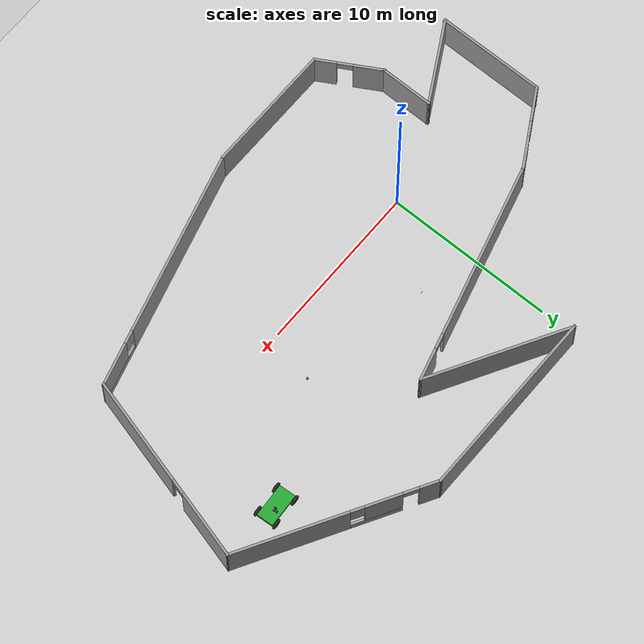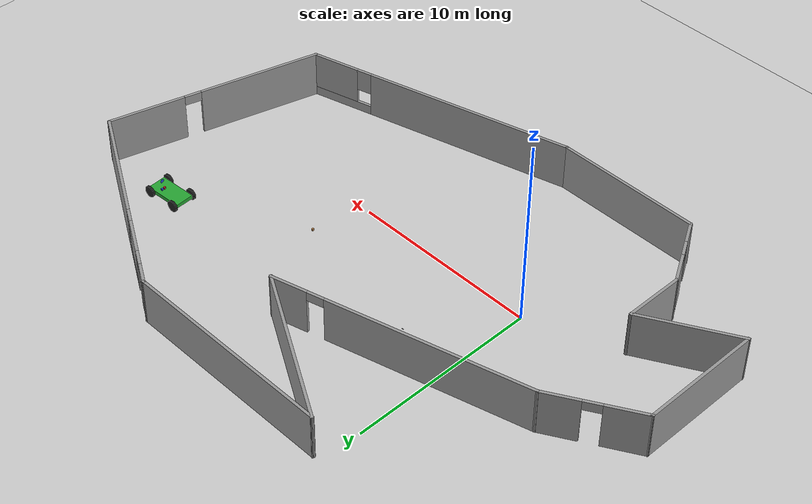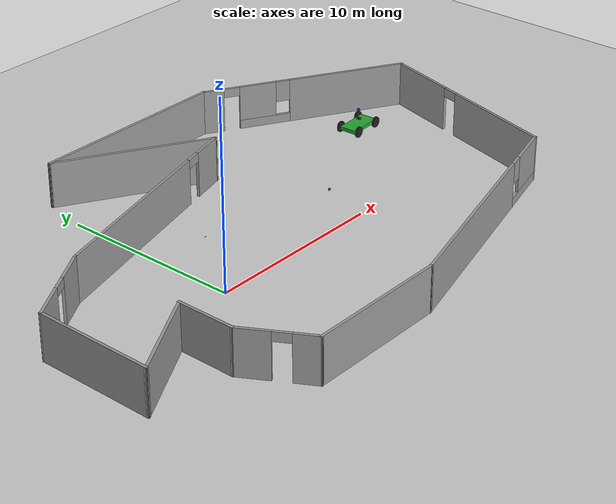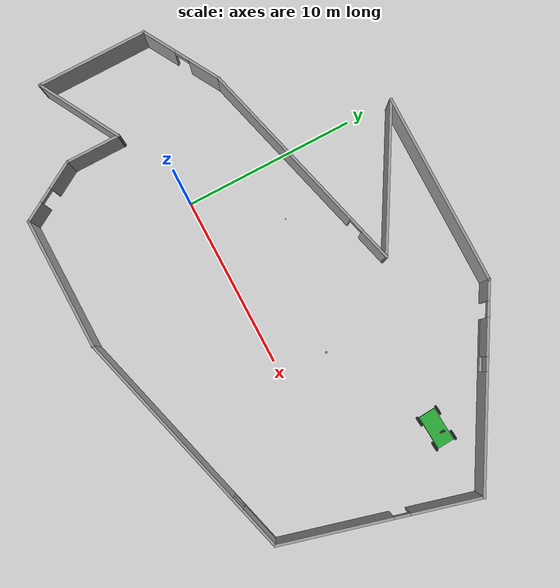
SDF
<sdf version="1.7">
 <world name="default">
  <light name="sun" type="directional">
   <pose>0 0 10 0 -0 0</pose>
   <diffuse>0.8 0.8 0.8 1</diffuse>
   <specular>0.2 0.2 0.2 1</specular>
   <attenuation>
    <range>1000</range>
    <constant>0.9</constant>
    <linear>0.01</linear>
    <quadratic>0.001</quadratic>
   </attenuation>
   <direction>-0.5 0.1 -0.9</direction>
   <spot><inner_angle>0</inner_angle><outer_angle>0</outer_angle><falloff>0</falloff></spot>
  </light>
  <model name="ground_plane">
   <static>1</static>
   <link name="link">
    <collision name="collision">
     <geometry><plane><normal>0 0 1</normal><size>100 100</size></plane></geometry>
     <surface><friction><ode><mu>100</mu><mu2>50</mu2></ode></friction></surface>
    </collision>
    <visual name="visual">
     <cast_shadows>0</cast_shadows>
     <geometry><plane><normal>0 0 1</normal><size>100 100</size></plane></geometry>
     <material>
      <script><uri>file://media/materials/scripts/gazebo.material</uri><name>Gazebo/Grey</name></script>
     </material>
    </visual>
   </link>
  </model>
  <gravity>0 0 -9.8</gravity>
  <magnetic_field>6e-06 2.3e-05 -4.2e-05</magnetic_field>
  <atmosphere type="adiabatic"/>
  <physics type="ode">
   <max_step_size>0.001</max_step_size>
   <real_time_factor>1</real_time_factor>
   <real_time_update_rate>1000</real_time_update_rate>
  </physics>
  <scene><ambient>0.4 0.4 0.4 1</ambient><background>0.7 0.7 0.7 1</background><shadows>1</shadows></scene>
  <audio><device>default</device></audio>
  <spherical_coordinates>
   <surface_model>EARTH_WGS84</surface_model>
   <latitude_deg>0</latitude_deg>
   <longitude_deg>0</longitude_deg>
   <elevation>0</elevation>
   <heading_deg>0</heading_deg>
  </spherical_coordinates>
  <model name="Untitled">
   <pose>6.19693 2.05446 0 0 -0 0</pose>
   <link name="Wall_0">
    <collision name="Wall_0_Collision">
     <geometry><box><size>3.25 0.15 2.5</size></box></geometry>
     <pose>0 0 1.25 0 -0 0</pose>
    </collision>
    <visual name="Wall_0_Visual">
     <pose>0 0 1.25 0 -0 0</pose>
     <geometry><box><size>3.25 0.15 2.5</size></box></geometry>
     <material>
      <script><uri>file://media/materials/scripts/gazebo.material</uri><name>Gazebo/Grey</name></script>
      <ambient>1 1 1 1</ambient>
     </material>
     <meta><layer>0</layer></meta>
    </visual>
    <pose>-10.9269 -5.35446 0 0 -0 -1.5708</pose>
   </link>
   <link name="Wall_1">
    <pose>-9.96443 -8.57156 0 0 -0 -1.0472</pose>
    <visual name="Wall_1_Visual_0">
     <pose>-1.111 0 1.25 0 -0 0</pose>
     <geometry><box><size>1.77801 0.15 2.5</size></box></geometry>
     <material>
      <script><uri>file://media/materials/scripts/gazebo.material</uri><name>Gazebo/Grey</name></script>
      <ambient>1 1 1 1</ambient>
     </material>
     <meta><layer>0</layer></meta>
    </visual>
    <collision name="Wall_1_Collision_0">
     <geometry><box><size>1.77801 0.15 2.5</size></box></geometry>
     <pose>-1.111 0 1.25 0 -0 0</pose>
    </collision>
    <visual name="Wall_1_Visual_1">
     <pose>1.339 0 1.25 0 -0 0</pose>
     <geometry><box><size>1.32199 0.15 2.5</size></box></geometry>
     <material>
      <script><uri>file://media/materials/scripts/gazebo.material</uri><name>Gazebo/Grey</name></script>
      <ambient>1 1 1 1</ambient>
     </material>
     <meta><layer>0</layer></meta>
    </visual>
    <collision name="Wall_1_Collision_1">
     <geometry><box><size>1.32199 0.15 2.5</size></box></geometry>
     <pose>1.339 0 1.25 0 -0 0</pose>
    </collision>
    <visual name="Wall_1_Visual_2">
     <pose>0.228008 0 2.25 0 -0 0</pose>
     <geometry><box><size>0.9 0.15 0.5</size></box></geometry>
     <material>
      <script><uri>file://media/materials/scripts/gazebo.material</uri><name>Gazebo/Grey</name></script>
      <ambient>1 1 1 1</ambient>
     </material>
     <meta><layer>0</layer></meta>
    </visual>
    <collision name="Wall_1_Collision_2">
     <geometry><box><size>0.9 0.15 0.5</size></box></geometry>
     <pose>0.228008 0 2.25 0 -0 0</pose>
    </collision>
   </link>
   <link name="Wall_10">
    <pose>-13.2966 1.27092 0 0 -0 -2.61799</pose>
    <visual name="Wall_10_Visual_0">
     <pose>-1.51658 0 1.25 0 -0 0</pose>
     <geometry><box><size>1.96685 0.15 2.5</size></box></geometry>
     <material>
      <script><uri>file://media/materials/scripts/gazebo.material</uri><name>Gazebo/Grey</name></script>
      <ambient>1 1 1 1</ambient>
     </material>
     <meta><layer>0</layer></meta>
    </visual>
    <collision name="Wall_10_Collision_0">
     <geometry><box><size>1.96685 0.15 2.5</size></box></geometry>
     <pose>-1.51658 0 1.25 0 -0 0</pose>
    </collision>
    <visual name="Wall_10_Visual_1">
     <pose>1.43342 0 1.25 0 -0 0</pose>
     <geometry><box><size>2.13315 0.15 2.5</size></box></geometry>
     <material>
      <script><uri>file://media/materials/scripts/gazebo.material</uri><name>Gazebo/Grey</name></script>
      <ambient>1 1 1 1</ambient>
     </material>
     <meta><layer>0</layer></meta>
    </visual>
    <collision name="Wall_10_Collision_1">
     <geometry><box><size>2.13315 0.15 2.5</size></box></geometry>
     <pose>1.43342 0 1.25 0 -0 0</pose>
    </collision>
    <visual name="Wall_10_Visual_2">
     <pose>-0.083152 0 2.25 0 -0 0</pose>
     <geometry><box><size>0.9 0.15 0.5</size></box></geometry>
     <material>
      <script><uri>file://media/materials/scripts/gazebo.material</uri><name>Gazebo/Grey</name></script>
      <ambient>1 1 1 1</ambient>
     </material>
     <meta><layer>0</layer></meta>
    </visual>
    <collision name="Wall_10_Collision_2">
     <geometry><box><size>0.9 0.15 0.5</size></box></geometry>
     <pose>-0.083152 0 2.25 0 -0 0</pose>
    </collision>
   </link>
   <link name="Wall_11">
    <collision name="Wall_11_Collision">
     <geometry><box><size>6.5 0.15 2.5</size></box></geometry>
     <pose>0 0 1.25 0 -0 0</pose>
    </collision>
    <visual name="Wall_11_Visual">
     <pose>0 0 1.25 0 -0 0</pose>
     <geometry><box><size>6.5 0.15 2.5</size></box></geometry>
     <material>
      <script><uri>file://media/materials/scripts/gazebo.material</uri><name>Gazebo/Grey</name></script>
      <ambient>1 1 1 1</ambient>
     </material>
     <meta><layer>0</layer></meta>
    </visual>
    <pose>-15.3967 -3.11658 0 0 -0 -1.5708</pose>
   </link>
   <link name="Wall_12">
    <collision name="Wall_12_Collision">
     <geometry><box><size>5.26514 0.15 2.5</size></box></geometry>
     <pose>0 0 1.25 0 -0 0</pose>
    </collision>
    <visual name="Wall_12_Visual">
     <pose>0 0 1.25 0 -0 0</pose>
     <geometry><box><size>5.26514 0.15 2.5</size></box></geometry>
     <material>
      <script><uri>file://media/materials/scripts/gazebo.material</uri><name>Gazebo/Grey</name></script>
      <ambient>1 1 1 1</ambient>
     </material>
     <meta><layer>0</layer></meta>
    </visual>
    <pose>-13.1618 -5.04802 0 0 -0 0.507767</pose>
   </link>
   <link name="Wall_3">
    <collision name="Wall_3_Collision">
     <geometry><box><size>7.75 0.15 2.5</size></box></geometry>
     <pose>0 0 1.25 0 -0 0</pose>
    </collision>
    <visual name="Wall_3_Visual">
     <pose>0 0 1.25 0 -0 0</pose>
     <geometry><box><size>7.75 0.15 2.5</size></box></geometry>
     <material>
      <script><uri>file://media/materials/scripts/gazebo.material</uri><name>Gazebo/Grey</name></script>
      <ambient>1 1 1 1</ambient>
     </material>
     <meta><layer>0</layer></meta>
    </visual>
    <pose>-5.20193 -10.2387 0 0 -0 0</pose>
   </link>
   <link name="Wall_4">
    <pose>5.52859 -8.38163 0 0 -0 0.261799</pose>
    <visual name="Wall_4_Visual_0">
     <pose>-1.70071 0 1.25 0 -0 0</pose>
     <geometry><box><size>11.0986 0.15 2.5</size></box></geometry>
     <material>
      <script><uri>file://media/materials/scripts/gazebo.material</uri><name>Gazebo/Grey</name></script>
      <ambient>1 1 1 1</ambient>
     </material>
     <meta><layer>0</layer></meta>
    </visual>
    <collision name="Wall_4_Collision_0">
     <geometry><box><size>11.0986 0.15 2.5</size></box></geometry>
     <pose>-1.70071 0 1.25 0 -0 0</pose>
    </collision>
    <visual name="Wall_4_Visual_1">
     <pose>5.54929 0 0.25 0 -0 0</pose>
     <geometry><box><size>3.40143 0.15 0.5</size></box></geometry>
     <material>
      <script><uri>file://media/materials/scripts/gazebo.material</uri><name>Gazebo/Grey</name></script>
      <ambient>1 1 1 1</ambient>
     </material>
     <meta><layer>0</layer></meta>
    </visual>
    <collision name="Wall_4_Collision_1">
     <geometry><box><size>3.40143 0.15 0.5</size></box></geometry>
     <pose>5.54929 0 0.25 0 -0 0</pose>
    </collision>
    <visual name="Wall_4_Visual_2">
     <pose>5.94928 0 1.5 0 -0 0</pose>
     <geometry><box><size>2.60143 0.15 2</size></box></geometry>
     <material>
      <script><uri>file://media/materials/scripts/gazebo.material</uri><name>Gazebo/Grey</name></script>
      <ambient>1 1 1 1</ambient>
     </material>
     <meta><layer>0</layer></meta>
    </visual>
    <collision name="Wall_4_Collision_2">
     <geometry><box><size>2.60143 0.15 2</size></box></geometry>
     <pose>5.94928 0 1.5 0 -0 0</pose>
    </collision>
    <visual name="Wall_4_Visual_3">
     <pose>4.24857 0 1.9 0 -0 0</pose>
     <geometry><box><size>0.8 0.15 1.2</size></box></geometry>
     <material>
      <script><uri>file://media/materials/scripts/gazebo.material</uri><name>Gazebo/Grey</name></script>
      <ambient>1 1 1 1</ambient>
     </material>
     <meta><layer>0</layer></meta>
    </visual>
    <collision name="Wall_4_Collision_3">
     <geometry><box><size>0.8 0.15 1.2</size></box></geometry>
     <pose>4.24857 0 1.9 0 -0 0</pose>
    </collision>
   </link>
   <link name="Wall_5">
    <pose>13.9279 -1.04297 0 0 -0 1.309</pose>
    <visual name="Wall_5_Visual_0">
     <pose>-2.49197 0 1.25 0 -0 0</pose>
     <geometry><box><size>6.51606 0.15 2.5</size></box></geometry>
     <material>
      <script><uri>file://media/materials/scripts/gazebo.material</uri><name>Gazebo/Grey</name></script>
      <ambient>1 1 1 1</ambient>
     </material>
     <meta><layer>0</layer></meta>
    </visual>
    <collision name="Wall_5_Collision_0">
     <geometry><box><size>6.51606 0.15 2.5</size></box></geometry>
     <pose>-2.49197 0 1.25 0 -0 0</pose>
    </collision>
    <visual name="Wall_5_Visual_1">
     <pose>3.70803 0 1.25 0 -0 0</pose>
     <geometry><box><size>4.08394 0.15 2.5</size></box></geometry>
     <material>
      <script><uri>file://media/materials/scripts/gazebo.material</uri><name>Gazebo/Grey</name></script>
      <ambient>1 1 1 1</ambient>
     </material>
     <meta><layer>0</layer></meta>
    </visual>
    <collision name="Wall_5_Collision_1">
     <geometry><box><size>4.08394 0.15 2.5</size></box></geometry>
     <pose>3.70803 0 1.25 0 -0 0</pose>
    </collision>
    <visual name="Wall_5_Visual_2">
     <pose>1.21606 0 2.25 0 -0 0</pose>
     <geometry><box><size>0.9 0.15 0.5</size></box></geometry>
     <material>
      <script><uri>file://media/materials/scripts/gazebo.material</uri><name>Gazebo/Grey</name></script>
      <ambient>1 1 1 1</ambient>
     </material>
     <meta><layer>0</layer></meta>
    </visual>
    <collision name="Wall_5_Collision_2">
     <geometry><box><size>0.9 0.15 0.5</size></box></geometry>
     <pose>1.21606 0 2.25 0 -0 0</pose>
    </collision>
   </link>
   <link name="Wall_6">
    <pose>10.3738 7.33866 0 0 -0 2.61799</pose>
    <visual name="Wall_6_Visual_0">
     <pose>-2.51206 0 1.25 0 -0 0</pose>
     <geometry><box><size>6.72589 0.15 2.5</size></box></geometry>
     <material>
      <script><uri>file://media/materials/scripts/gazebo.material</uri><name>Gazebo/Grey</name></script>
      <ambient>1 1 1 1</ambient>
     </material>
     <meta><layer>0</layer></meta>
    </visual>
    <collision name="Wall_6_Collision_0">
     <geometry><box><size>6.72589 0.15 2.5</size></box></geometry>
     <pose>-2.51206 0 1.25 0 -0 0</pose>
    </collision>
    <visual name="Wall_6_Visual_1">
     <pose>5.25921 0 1.25 0 -0 0</pose>
     <geometry><box><size>1.23158 0.15 2.5</size></box></geometry>
     <material>
      <script><uri>file://media/materials/scripts/gazebo.material</uri><name>Gazebo/Grey</name></script>
      <ambient>1 1 1 1</ambient>
     </material>
     <meta><layer>0</layer></meta>
    </visual>
    <collision name="Wall_6_Collision_1">
     <geometry><box><size>1.23158 0.15 2.5</size></box></geometry>
     <pose>5.25921 0 1.25 0 -0 0</pose>
    </collision>
    <visual name="Wall_6_Visual_2">
     <pose>2.29715 0 0.25 0 -0 0</pose>
     <geometry><box><size>2.89253 0.15 0.5</size></box></geometry>
     <material>
      <script><uri>file://media/materials/scripts/gazebo.material</uri><name>Gazebo/Grey</name></script>
      <ambient>1 1 1 1</ambient>
     </material>
     <meta><layer>0</layer></meta>
    </visual>
    <collision name="Wall_6_Collision_2">
     <geometry><box><size>2.89253 0.15 0.5</size></box></geometry>
     <pose>2.29715 0 0.25 0 -0 0</pose>
    </collision>
    <visual name="Wall_6_Visual_3">
     <pose>2.69715 0 1.5 0 -0 0</pose>
     <geometry><box><size>2.09253 0.15 2</size></box></geometry>
     <material>
      <script><uri>file://media/materials/scripts/gazebo.material</uri><name>Gazebo/Grey</name></script>
      <ambient>1 1 1 1</ambient>
     </material>
     <meta><layer>0</layer></meta>
    </visual>
    <collision name="Wall_6_Collision_3">
     <geometry><box><size>2.09253 0.15 2</size></box></geometry>
     <pose>2.69715 0 1.5 0 -0 0</pose>
    </collision>
    <visual name="Wall_6_Visual_4">
     <pose>1.25089 0 1.9 0 -0 0</pose>
     <geometry><box><size>0.8 0.15 1.2</size></box></geometry>
     <material>
      <script><uri>file://media/materials/scripts/gazebo.material</uri><name>Gazebo/Grey</name></script>
      <ambient>1 1 1 1</ambient>
     </material>
     <meta><layer>0</layer></meta>
    </visual>
    <collision name="Wall_6_Collision_4">
     <geometry><box><size>0.8 0.15 1.2</size></box></geometry>
     <pose>1.25089 0 1.9 0 -0 0</pose>
    </collision>
    <visual name="Wall_6_Visual_5">
     <pose>4.19341 0 2.25 0 -0 0</pose>
     <geometry><box><size>0.9 0.15 0.5</size></box></geometry>
     <material>
      <script><uri>file://media/materials/scripts/gazebo.material</uri><name>Gazebo/Grey</name></script>
      <ambient>1 1 1 1</ambient>
     </material>
     <meta><layer>0</layer></meta>
    </visual>
    <collision name="Wall_6_Collision_5">
     <geometry><box><size>0.9 0.15 0.5</size></box></geometry>
     <pose>4.19341 0 2.25 0 -0 0</pose>
    </collision>
   </link>
   <link name="Wall_7">
    <collision name="Wall_7_Collision">
     <geometry><box><size>11.25 0.15 2.5</size></box></geometry>
     <pose>0 0 1.25 0 -0 0</pose>
    </collision>
    <visual name="Wall_7_Visual">
     <pose>0 0 1.25 0 -0 0</pose>
     <geometry><box><size>11.25 0.15 2.5</size></box></geometry>
     <material>
      <script><uri>file://media/materials/scripts/gazebo.material</uri><name>Gazebo/Grey</name></script>
      <ambient>1 1 1 1</ambient>
     </material>
     <meta><layer>0</layer></meta>
    </visual>
    <pose>-0.199192 10.2387 0 0 -0 3.14159</pose>
   </link>
   <link name="Wall_8">
    <collision name="Wall_8_Collision">
     <geometry><box><size>8.75 0.15 2.5</size></box></geometry>
     <pose>0 0 1.25 0 -0 0</pose>
    </collision>
    <visual name="Wall_8_Visual">
     <pose>0 0 1.25 0 -0 0</pose>
     <geometry><box><size>8.75 0.15 2.5</size></box></geometry>
     <material>
      <script><uri>file://media/materials/scripts/gazebo.material</uri><name>Gazebo/Grey</name></script>
      <ambient>1 1 1 1</ambient>
     </material>
     <meta><layer>0</layer></meta>
    </visual>
    <pose>-2.02528 8.08865 0 0 -0 -0.523599</pose>
   </link>
   <link name="Wall_9">
    <pose>-4.74893 4.21104 0 0 -0 -2.87979</pose>
    <visual name="Wall_9_Visual_0">
     <pose>-5.75632 0 1.25 0 -0 0</pose>
     <geometry><box><size>1.98737 0.15 2.5</size></box></geometry>
     <material>
      <script><uri>file://media/materials/scripts/gazebo.material</uri><name>Gazebo/Grey</name></script>
      <ambient>1 1 1 1</ambient>
     </material>
     <meta><layer>0</layer></meta>
    </visual>
    <collision name="Wall_9_Collision_0">
     <geometry><box><size>1.98737 0.15 2.5</size></box></geometry>
     <pose>-5.75632 0 1.25 0 -0 0</pose>
    </collision>
    <visual name="Wall_9_Visual_1">
     <pose>1.44368 0 1.25 0 -0 0</pose>
     <geometry><box><size>10.6126 0.15 2.5</size></box></geometry>
     <material>
      <script><uri>file://media/materials/scripts/gazebo.material</uri><name>Gazebo/Grey</name></script>
      <ambient>1 1 1 1</ambient>
     </material>
     <meta><layer>0</layer></meta>
    </visual>
    <collision name="Wall_9_Collision_1">
     <geometry><box><size>10.6126 0.15 2.5</size></box></geometry>
     <pose>1.44368 0 1.25 0 -0 0</pose>
    </collision>
    <visual name="Wall_9_Visual_2">
     <pose>-4.31263 0 2.25 0 -0 0</pose>
     <geometry><box><size>0.9 0.15 0.5</size></box></geometry>
     <material>
      <script><uri>file://media/materials/scripts/gazebo.material</uri><name>Gazebo/Grey</name></script>
      <ambient>1 1 1 1</ambient>
     </material>
     <meta><layer>0</layer></meta>
    </visual>
    <collision name="Wall_9_Collision_2">
     <geometry><box><size>0.9 0.15 0.5</size></box></geometry>
     <pose>-4.31263 0 2.25 0 -0 0</pose>
    </collision>
   </link>
   <static>1</static>
  </model>
  <model name="stone_10_2_5_1cm">
   <link name="link">
    <pose>0 0 0.005 0 -0 0</pose>
    <inertial>
     <mass>0.0628</mass>
     <inertia>
      <ixx>3.79417e-06</ixx>
      <ixy>0</ixy>
      <ixz>0</ixz>
      <iyy>5.28567e-05</iyy>
      <iyz>0</iyz>
      <izz>5.56042e-05</izz>
     </inertia>
    </inertial>
    <collision name="collision">
     <geometry><box><size>0.1 0.025 0.01</size></box></geometry>
     <surface>
      <contact>
       <poissons_ratio>0.15</poissons_ratio>
       <elastic_modulus>8e+10</elastic_modulus>
       <ode><kp>100000</kp><kd>100</kd><max_vel>100</max_vel><min_depth>0.001</min_depth></ode>
      </contact>
      <friction>
       <torsional>
        <coefficient>1</coefficient>
        <use_patch_radius>0</use_patch_radius>
        <surface_radius>0.01</surface_radius>
       </torsional>
      </friction>
     </surface>
    </collision>
    <visual name="visual">
     <geometry><box><size>0.1 0.025 0.01</size></box></geometry>
     <material>
      <script><uri>file://media/materials/scripts/gazebo.material</uri><name>Gazebo/Grey</name></script>
     </material>
    </visual>
   </link>
   <pose>3.2251 4.33604 -0.001002 -0 -0 -0</pose>
  </model>
  <model name="wood_cube_10cm">
   <link name="link">
    <pose>0 0 0.05 0 -0 0</pose>
    <inertial>
     <mass>0.5167</mass>
     <inertia>
      <ixx>0.000861167</ixx>
      <ixy>0</ixy>
      <ixz>0</ixz>
      <iyy>0.000861167</iyy>
      <iyz>0</iyz>
      <izz>0.000861167</izz>
     </inertia>
    </inertial>
    <collision name="collision">
     <geometry><box><size>0.1 0.1 0.1</size></box></geometry>
     <surface>
      <contact>
       <poissons_ratio>0.347</poissons_ratio>
       <elastic_modulus>8.8e+09</elastic_modulus>
       <ode><kp>100000</kp><kd>100</kd><max_vel>100</max_vel><min_depth>0.001</min_depth></ode>
      </contact>
      <friction>
       <torsional>
        <coefficient>1</coefficient>
        <use_patch_radius>0</use_patch_radius>
        <surface_radius>0.01</surface_radius>
       </torsional>
      </friction>
     </surface>
    </collision>
    <visual name="visual">
     <geometry><box><size>0.1 0.1 0.1</size></box></geometry>
     <material>
      <script><uri>file://media/materials/scripts/gazebo.material</uri><name>Gazebo/Wood</name></script>
     </material>
    </visual>
   </link>
   <pose>10.9215 2.82272 -0.001013 0 -0 0</pose>
  </model>
  <model name="car">
   <link name="chassis">
    <pose>0 0 0.3 0 -0 0</pose>
    <collision name="collision"><geometry><box><size>2 1 0.2</size></box></geometry></collision>
    <visual name="visual">
     <geometry><box><size>2 1 0.2</size></box></geometry>
     <material>
      <script><uri>file://media/materials/scripts/gazebo.material</uri><name>Gazebo/Green</name></script>
     </material>
    </visual>
    <inertial>
     <inertia><ixx>1</ixx><ixy>0</ixy><ixz>0</ixz><iyy>1</iyy><iyz>0</iyz><izz>1</izz></inertia>
     <mass>1</mass>
    </inertial>
   </link>
   <link name="front_left_wheel">
    <pose>0.8 0.6 0.3 -0 1.5707 1.5707</pose>
    <collision name="collision">
     <geometry><cylinder><radius>0.3</radius><length>0.1</length></cylinder></geometry>
    </collision>
    <visual name="visual">
     <geometry><cylinder><radius>0.3</radius><length>0.1</length></cylinder></geometry>
     <material>
      <script><uri>file://media/materials/scripts/gazebo.material</uri><name>Gazebo/Black</name></script>
     </material>
    </visual>
    <inertial>
     <inertia><ixx>1</ixx><ixy>0</ixy><ixz>0</ixz><iyy>1</iyy><iyz>0</iyz><izz>1</izz></inertia>
     <mass>1</mass>
    </inertial>
   </link>
   <link name="front_right_wheel">
    <pose>0.8 -0.6 0.3 -0 1.5707 1.5707</pose>
    <collision name="collision">
     <geometry><cylinder><radius>0.3</radius><length>0.1</length></cylinder></geometry>
    </collision>
    <visual name="visual">
     <geometry><cylinder><radius>0.3</radius><length>0.1</length></cylinder></geometry>
     <material>
      <script><uri>file://media/materials/scripts/gazebo.material</uri><name>Gazebo/Black</name></script>
     </material>
    </visual>
    <inertial>
     <inertia><ixx>1</ixx><ixy>0</ixy><ixz>0</ixz><iyy>1</iyy><iyz>0</iyz><izz>1</izz></inertia>
     <mass>1</mass>
    </inertial>
   </link>
   <link name="back_right_wheel">
    <pose>-0.8 -0.6 0.3 -0 1.5707 1.5707</pose>
    <collision name="collision">
     <geometry><cylinder><radius>0.3</radius><length>0.1</length></cylinder></geometry>
    </collision>
    <visual name="visual">
     <geometry><cylinder><radius>0.3</radius><length>0.1</length></cylinder></geometry>
     <material>
      <script><uri>file://media/materials/scripts/gazebo.material</uri><name>Gazebo/Black</name></script>
     </material>
    </visual>
    <inertial>
     <inertia><ixx>1</ixx><ixy>0</ixy><ixz>0</ixz><iyy>1</iyy><iyz>0</iyz><izz>1</izz></inertia>
     <mass>1</mass>
    </inertial>
   </link>
   <link name="back_left_wheel">
    <pose>-0.8 0.6 0.3 -0 1.5707 1.5707</pose>
    <collision name="collision">
     <geometry><cylinder><radius>0.3</radius><length>0.1</length></cylinder></geometry>
    </collision>
    <visual name="visual">
     <geometry><cylinder><radius>0.3</radius><length>0.1</length></cylinder></geometry>
     <material>
      <script><uri>file://media/materials/scripts/gazebo.material</uri><name>Gazebo/Black</name></script>
     </material>
    </visual>
    <inertial>
     <inertia><ixx>1</ixx><ixy>0</ixy><ixz>0</ixz><iyy>1</iyy><iyz>0</iyz><izz>1</izz></inertia>
     <mass>1</mass>
    </inertial>
   </link>
   <link name="gas_pedal">
    <pose>0.3 0.1 0.5 0 -0 0</pose>
    <collision name="collision"><geometry><box><size>0.1 0.1 0.1</size></box></geometry></collision>
    <visual name="visual">
     <geometry><box><size>0.1 0.1 0.1</size></box></geometry>
     <material>
      <script><uri>file://media/materials/scripts/gazebo.material</uri><name>Gazebo/Red</name></script>
     </material>
    </visual>
    <inertial>
     <inertia><ixx>1</ixx><ixy>0</ixy><ixz>0</ixz><iyy>1</iyy><iyz>0</iyz><izz>1</izz></inertia>
     <mass>1</mass>
    </inertial>
   </link>
   <link name="brake_pedal">
    <pose>0.3 0.25 0.5 0 -0 0</pose>
    <collision name="collision"><geometry><box><size>0.1 0.1 0.1</size></box></geometry></collision>
    <visual name="visual">
     <geometry><box><size>0.1 0.1 0.1</size></box></geometry>
     <material>
      <script><uri>file://media/materials/scripts/gazebo.material</uri><name>Gazebo/Blue</name></script>
     </material>
    </visual>
    <inertial>
     <inertia><ixx>1</ixx><ixy>0</ixy><ixz>0</ixz><iyy>1</iyy><iyz>0</iyz><izz>1</izz></inertia>
     <mass>1</mass>
    </inertial>
   </link>
   <link name="steering_wheel">
    <pose>0.3 0.2 1 0 1.5707 0</pose>
    <collision name="collision">
     <geometry><cylinder><radius>0.1</radius><length>0.01</length></cylinder></geometry>
    </collision>
    <visual name="visual">
     <geometry><cylinder><radius>0.1</radius><length>0.01</length></cylinder></geometry>
     <material>
      <script><uri>file://media/materials/scripts/gazebo.material</uri><name>Gazebo/Blue</name></script>
     </material>
    </visual>
    <inertial>
     <inertia><ixx>1</ixx><ixy>0</ixy><ixz>0</ixz><iyy>1</iyy><iyz>0</iyz><izz>1</izz></inertia>
     <mass>1</mass>
    </inertial>
   </link>
   <joint name="gas_joint" type="prismatic">
    <parent>chassis</parent>
    <child>gas_pedal</child>
    <axis>
     <xyz expressed_in="__model__">1 0 0</xyz>
     <limit><lower>0</lower><upper>0.2</upper></limit>
     <dynamics><spring_reference>0</spring_reference><spring_stiffness>0</spring_stiffness></dynamics>
    </axis>
   </joint>
   <joint name="brake_joint" type="prismatic">
    <parent>chassis</parent>
    <child>brake_pedal</child>
    <axis>
     <xyz expressed_in="__model__">1 0 0</xyz>
     <limit><lower>0</lower><upper>0.2</upper></limit>
     <dynamics><spring_reference>0</spring_reference><spring_stiffness>0</spring_stiffness></dynamics>
    </axis>
   </joint>
   <joint name="steering_joint" type="revolute">
    <parent>chassis</parent>
    <child>steering_wheel</child>
    <axis>
     <xyz expressed_in="__model__">1 0 0</xyz>
     <limit><lower>-7.853</lower><upper>7.853</upper></limit>
     <dynamics><spring_reference>0</spring_reference><spring_stiffness>0</spring_stiffness></dynamics>
    </axis>
   </joint>
   <joint name="front_left_joint" type="revolute2">
    <parent>chassis</parent>
    <child>front_left_wheel</child>
    <axis>
     <xyz expressed_in="__model__">0 0 1</xyz>
     <limit><lower>2.07138e-07</lower><upper>2.07138e-07</upper></limit>
     <dynamics><spring_reference>0</spring_reference><spring_stiffness>0</spring_stiffness></dynamics>
    </axis>
    <axis2>
     <xyz expressed_in="__model__">0 1 0</xyz>
     <limit><upper>1e+16</upper><lower>-1e+16</lower></limit>
     <dynamics><spring_reference>0</spring_reference><spring_stiffness>0</spring_stiffness></dynamics>
    </axis2>
    <physics><ode><limit><cfm>0</cfm><erp>0.9</erp></limit></ode></physics>
   </joint>
   <joint name="front_right_joint" type="revolute2">
    <parent>chassis</parent>
    <child>front_right_wheel</child>
    <axis>
     <xyz expressed_in="__model__">0 0 1</xyz>
     <limit><lower>2.07138e-07</lower><upper>2.07138e-07</upper></limit>
     <dynamics><spring_reference>0</spring_reference><spring_stiffness>0</spring_stiffness></dynamics>
    </axis>
    <axis2>
     <xyz expressed_in="__model__">0 1 0</xyz>
     <limit><upper>1e+16</upper><lower>-1e+16</lower></limit>
     <dynamics><spring_reference>0</spring_reference><spring_stiffness>0</spring_stiffness></dynamics>
    </axis2>
    <physics><ode><limit><cfm>0</cfm><erp>0.9</erp></limit></ode></physics>
   </joint>
   <joint name="back_right_joint" type="revolute2">
    <parent>chassis</parent>
    <child>back_right_wheel</child>
    <axis>
     <xyz expressed_in="__model__">0 0 1</xyz>
     <limit><lower>0</lower><upper>0</upper></limit>
     <dynamics><spring_reference>0</spring_reference><spring_stiffness>0</spring_stiffness></dynamics>
    </axis>
    <axis2>
     <xyz expressed_in="__model__">0 1 0</xyz>
     <limit><upper>1e+16</upper><lower>-1e+16</lower></limit>
     <dynamics><spring_reference>0</spring_reference><spring_stiffness>0</spring_stiffness></dynamics>
    </axis2>
    <physics><ode><limit><cfm>0</cfm><erp>0.9</erp></limit></ode></physics>
   </joint>
   <joint name="back_left_joint" type="revolute2">
    <parent>chassis</parent>
    <child>back_left_wheel</child>
    <axis>
     <xyz expressed_in="__model__">0 0 1</xyz>
     <limit><lower>0</lower><upper>0</upper></limit>
     <dynamics><spring_reference>0</spring_reference><spring_stiffness>0</spring_stiffness></dynamics>
    </axis>
    <axis2>
     <xyz expressed_in="__model__">0 1 0</xyz>
     <limit><upper>1e+16</upper><lower>-1e+16</lower></limit>
     <dynamics><spring_reference>0</spring_reference><spring_stiffness>0</spring_stiffness></dynamics>
    </axis2>
    <physics><ode><limit><cfm>0</cfm><erp>0.9</erp></limit></ode></physics>
   </joint>
   <plugin name="vehicle" filename="libVehiclePlugin.so">
    <front_left>front_left_joint</front_left>
    <front_right>front_right_joint</front_right>
    <back_left>back_left_joint</back_left>
    <back_right>back_right_joint</back_right>
    <gas>gas_joint</gas>
    <brake>brake_joint</brake>
    <steering>steering_joint</steering>
    <front_power>10</front_power>
    <rear_power>10</rear_power>
    <tire_angle_range>0.5</tire_angle_range>
    <max_speed>10</max_speed>
    <aero_load>0.1</aero_load>
   </plugin>
   <pose>17.4575 6.20246 1e-05 -5e-06 3e-06 0.06408</pose>
  </model>
 </world>
</sdf>
